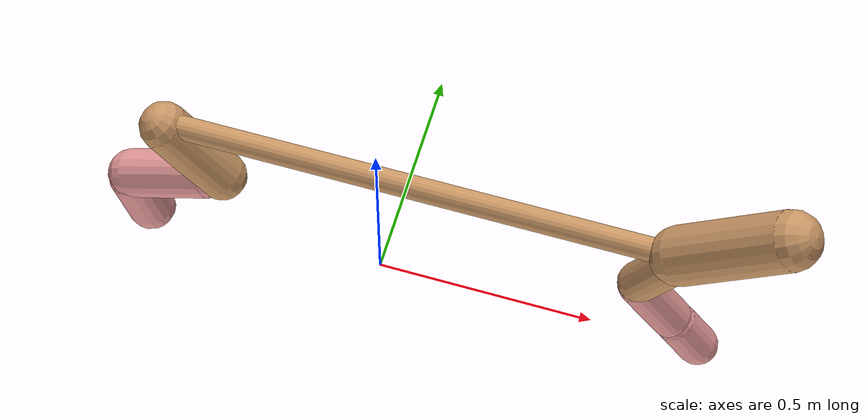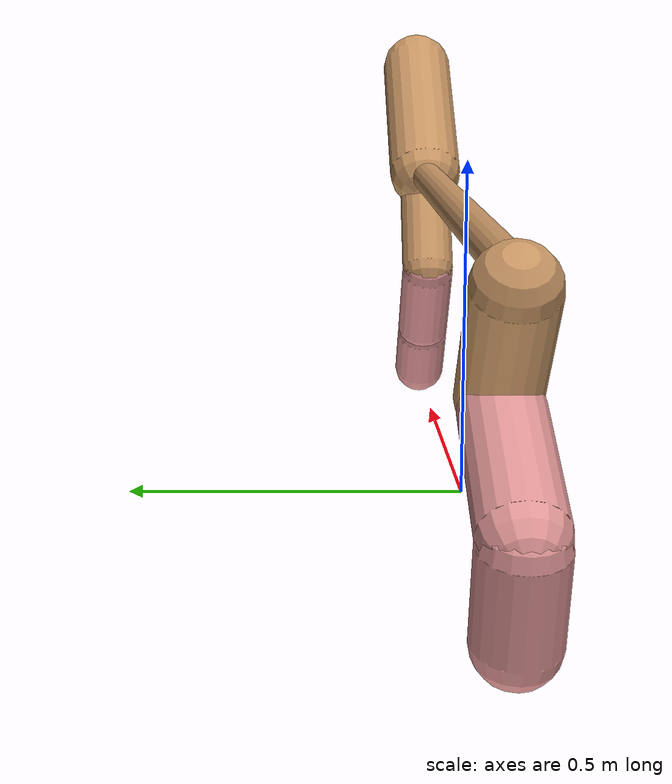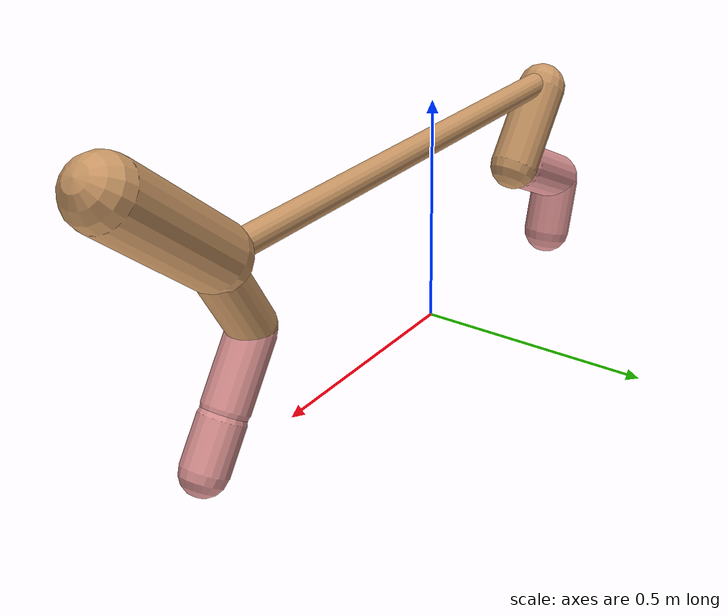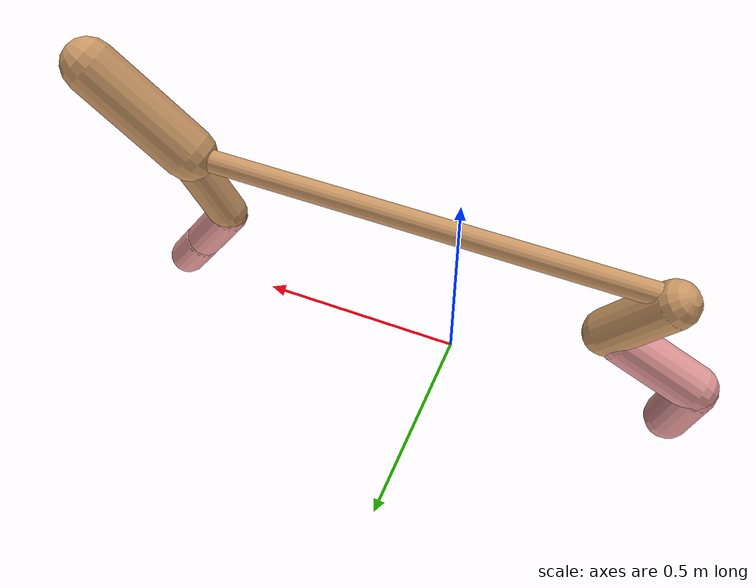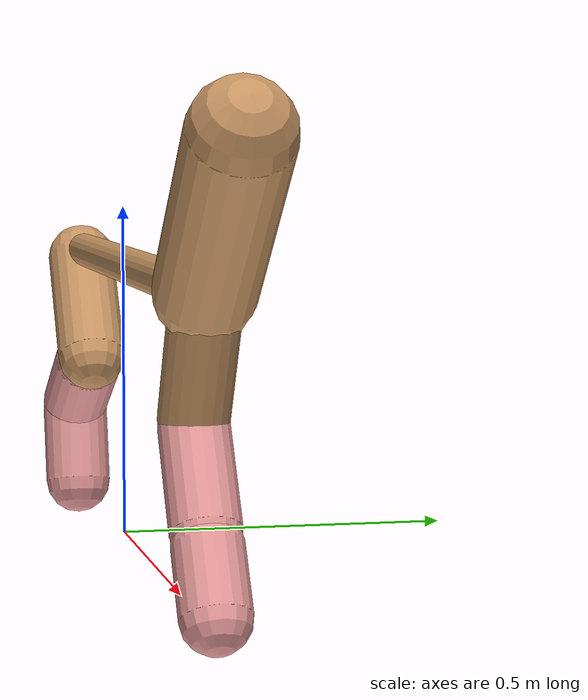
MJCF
<mujoco model="cheetah">
  <compiler angle="radian" coordinate="local" inertiafromgeom="true" settotalmass="14" />
  <default>
    <joint armature=".1" damping=".01" limited="true" solimplimit="0 .8 .03" solreflimit=".02 1" stiffness="8" />
    <geom conaffinity="0" condim="3" contype="1" friction="0.8 .1 .1" rgba="0.8 0.6 .4 1" solimp="0.0 0.8 0.01" solref="0.02 1" />
    <motor ctrllimited="true" ctrlrange="-1 1" />
  </default>
  <size nstack="300000" nuser_geom="1" />
  <option gravity="0 0 -9.81" timestep="0.01" />
  <worldbody>
    <body name="torso" pos="0.0 0.0 0.41319999999999996">
      <joint armature="0" axis="1 0 0" damping="0" limited="false" name="ignorex" pos="0 0 0" stiffness="0" type="slide" />
      <joint armature="0" axis="0 0 1" damping="0" limited="false" name="ignorez" pos="0 0 0" stiffness="0" type="slide" />
      <joint armature="0" axis="0 1 0" damping="0" limited="false" name="ignorey" pos="0 0 0" stiffness="0" type="hinge" />
      <geom fromto="-0.5 0.0 0.0 0.6939209581322828 0.0 0.0" name="torso" size="0.027447401783696743" type="capsule" />
      <geom axisangle="0 1 0 .87" name="head" pos="0.7939209581322827 0.0 0.1" size="0.06675036108475416 0.15" type="capsule" />

      <body name="bthigh" pos="-.5 0 0">
        <joint axis="0 1 0" damping="6" name="bthigh" pos="0 0 0" range="-.52 1.05" stiffness="240" type="hinge" />
        <geom axisangle="0 1 0 -3.8" name="bthigh" pos="0.0734775819030384 0.0 -0.0955208564739499" size="0.05613535560213932 0.10149999999999999" type="capsule" />
        <body name="bshin" pos="0.10695516380607678 0.0 -0.18104171294789978">
          <joint axis="0 1 0" damping="4.5" name="bshin" pos="0 0 0" range="-.785 .785" stiffness="180" type="hinge" />
          <geom axisangle="0 1 0 -2.03" name="bshin" pos="-0.0997507764050038 0.0 -0.0498753882025019" rgba="0.9 0.6 0.6 1" size="0.05613535560213932 0.105" type="capsule" />
          <body name="bfoot" pos="-0.1995015528100076 0.0 -0.0997507764050038">
            <joint axis="0 1 0" damping="3" name="bfoot" pos="0 0 0" range="-.4 .785" stiffness="120" type="hinge" />
            <geom axisangle="0 1 0 -.27" name="bfoot" pos="0.021667753813597694 0.0 -0.07005907066396588" rgba="0.9 0.6 0.6 1" size="0.05613535560213932 0.0658" type="capsule" />
            <inertial mass="10" />
          </body>
        </body>
      </body>
      <body name="fthigh" pos="0.6939209581322827 0.0 0.0">
        <joint axis="0 1 0" damping="4.5" name="fthigh" pos="0 0 0" range="-1.5 0.8" stiffness="180" type="hinge" />
        <geom axisangle="0 1 0 .52" name="fthigh" pos="-0.04989554608158897 0.0 -0.0855352218541525" size="0.04704738333503822 0.0931" type="capsule" />
        <body name="fshin" pos="-0.09979109216317794 0.0 -0.171070443708305">
          <joint axis="0 1 0" damping="3" name="fshin" pos="0 0 0" range="-1.2 1.1" stiffness="120" type="hinge" />
          <geom axisangle="0 1 0 -.6" name="fshin" pos="0.046381400387749405 0.0 -0.06422040053688378" rgba="0.9 0.6 0.6 1" size="0.04704738333503822 0.07419999999999999" type="capsule" />
          <body name="ffoot" pos="0.09276280077549881 0.0 -0.12844080107376757">
            <joint axis="0 1 0" damping="1.5" name="ffoot" pos="0 0 0" range="-3.1 -0.3" stiffness="60" type="hinge" />
            <geom axisangle="0 1 0 -.6" name="ffoot" pos="0.033644090582416526 0.0 -0.05233525201709238" rgba="0.9 0.6 0.6 1" size="0.04704738333503822 0.049" type="capsule" />
            <inertial mass="10" />
          </body>
        </body>
      </body>
    </body>
  </worldbody>
  <actuator>
    <motor gear="120" joint="bthigh" name="bthigh" />
    <motor gear="90" joint="bshin" name="bshin" />
    <motor gear="60" joint="bfoot" name="bfoot" />
    <motor gear="120" joint="fthigh" name="fthigh" />
    <motor gear="60" joint="fshin" name="fshin" />
    <motor gear="30" joint="ffoot" name="ffoot" />
  </actuator>
</mujoco>
